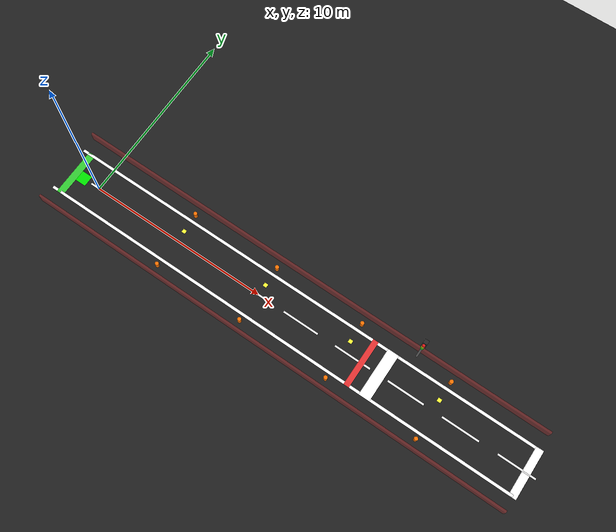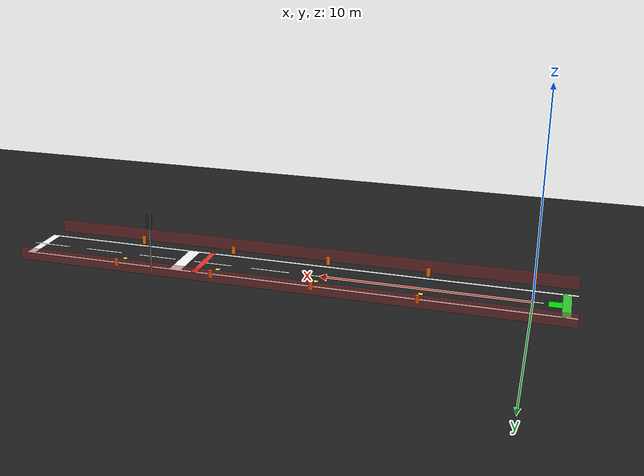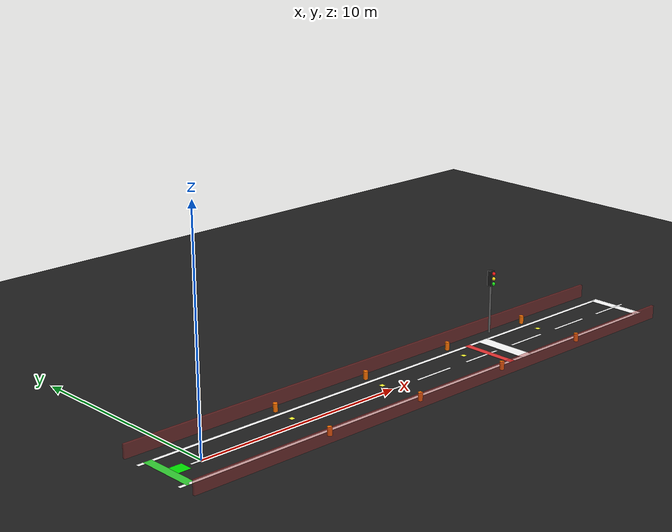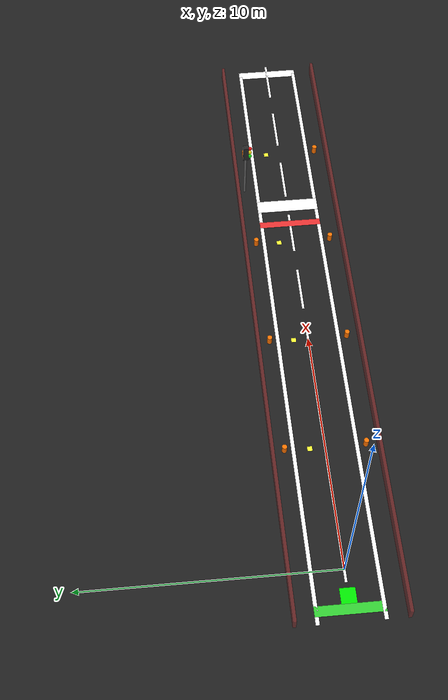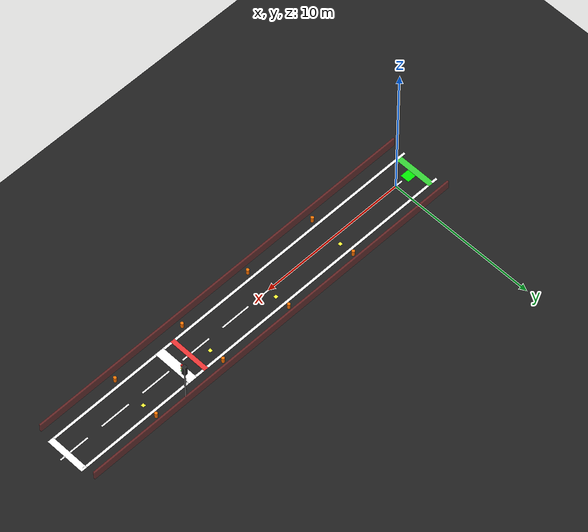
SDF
<?xml version="1.0" ?>
<sdf version='1.10'>
  <world name='abaja_lane_track'>

    <!-- ====================================================================
         PHYSICS
    ==================================================================== -->
    <physics name='1ms' type='ignored'>
      <max_step_size>0.001</max_step_size>
      <real_time_factor>1</real_time_factor>
    </physics>

    <!-- ====================================================================
         PLUGINS — All systems needed for sensors
    ==================================================================== -->
    <plugin filename='gz-sim-physics-system'
            name='gz::sim::systems::Physics'/>

    <!-- Sensor system: required for camera, lidar, imu, navsat to work -->
    <plugin filename='gz-sim-sensors-system'
            name='gz::sim::systems::Sensors'>
      <render_engine>ogre2</render_engine>
    </plugin>

    <plugin filename='gz-sim-scene-broadcaster-system'
            name='gz::sim::systems::SceneBroadcaster'/>

    <plugin filename='gz-sim-user-commands-system'
            name='gz::sim::systems::UserCommands'/>

    <!-- IMU system: enables imu sensor simulation -->
    <plugin filename='gz-sim-imu-system'
            name='gz::sim::systems::Imu'/>

    <!-- NavSat (GPS) system: enables navsat sensor simulation -->
    <plugin filename='gz-sim-navsat-system'
            name='gz::sim::systems::NavSat'/>

    <!-- ====================================================================
         SCENE & LIGHTING
    ==================================================================== -->
    <scene>
      <ambient>0.5 0.5 0.5 1</ambient>
      <background>0.60 0.75 0.92 1</background>
      <shadows>false</shadows>
    </scene>

    <!-- Overhead sun — bright, directional, no shadows (fast rendering) -->
    <light name='sun' type='directional'>
      <cast_shadows>false</cast_shadows>
      <pose>0 0 15 0 0 0</pose>
      <diffuse>0.95 0.95 0.90 1</diffuse>
      <specular>0.30 0.30 0.30 1</specular>
      <direction>-0.3 0.1 -0.95</direction>
      <attenuation>
        <range>1000</range>
        <constant>0.9</constant>
        <linear>0.01</linear>
        <quadratic>0.001</quadratic>
      </attenuation>
    </light>

    <!-- Secondary fill light (reduces harsh shadows) -->
    <light name='fill_light' type='point'>
      <pose>12 0 8 0 0 0</pose>
      <diffuse>0.4 0.4 0.4 1</diffuse>
      <specular>0.1 0.1 0.1 1</specular>
      <attenuation>
        <range>50</range>
        <constant>0.5</constant>
        <linear>0.02</linear>
        <quadratic>0.002</quadratic>
      </attenuation>
    </light>

    <model name='ground_plane'>
      <static>true</static>
      <link name='link'>
        <collision name='collision'>
          <geometry>
            <plane>
              <normal>0 0 1</normal>
              <size>80 30</size>
            </plane>
          </geometry>
          <surface>
            <friction>
              <ode>
                <mu>1.0</mu>
                <mu2>1.0</mu2>
              </ode>
            </friction>
          </surface>
        </collision>
        <visual name='visual'>
          <geometry>
            <plane>
              <normal>0 0 1</normal>
              <size>80 30</size>
            </plane>
          </geometry>
          <!-- Dark asphalt — high contrast with white lane markings -->
          <material>
            <ambient>0.12 0.12 0.12 1</ambient>
            <diffuse>0.12 0.12 0.12 1</diffuse>
            <specular>0.02 0.02 0.02 1</specular>
          </material>
        </visual>
      </link>
    </model>

    <!-- == LEFT EDGE LINE (continuous) == -->
    <model name='left_edge_line'>
      <static>true</static>
      <pose>11.5 1.25 0.005 0 0 0</pose>
      <link name='link'>
        <visual name='vis'>
          <geometry><box><size>27 0.15 0.01</size></box></geometry>
          <material>
            <ambient>1 1 1 1</ambient>
            <diffuse>1 1 1 1</diffuse>
            <specular>0.6 0.6 0.6 1</specular>
          </material>
        </visual>
        <collision name='col'>
          <geometry><box><size>27 0.15 0.01</size></box></geometry>
        </collision>
      </link>
    </model>

    <!-- == RIGHT EDGE LINE (continuous) == -->
    <model name='right_edge_line'>
      <static>true</static>
      <pose>11.5 -1.25 0.005 0 0 0</pose>
      <link name='link'>
        <visual name='vis'>
          <geometry><box><size>27 0.15 0.01</size></box></geometry>
          <material>
            <ambient>1 1 1 1</ambient>
            <diffuse>1 1 1 1</diffuse>
            <specular>0.6 0.6 0.6 1</specular>
          </material>
        </visual>
        <collision name='col'>
          <geometry><box><size>27 0.15 0.01</size></box></geometry>
        </collision>
      </link>
    </model>

    <!-- == CENTRE DASHES (2m on, 1m gap, starting at X=0) == -->
    <!-- 9 dashes covering X=0 to X=25m -->
    <model name='dash_1'><static>true</static><pose>0.5 0 0.005 0 0 0</pose>
      <link name='l'><visual name='v'><geometry><box><size>2 0.10 0.01</size></box></geometry>
        <material><ambient>1 1 1 1</ambient><diffuse>1 1 1 1</diffuse></material></visual>
        <collision name='c'><geometry><box><size>2 0.10 0.01</size></box></geometry></collision></link></model>
    <model name='dash_2'><static>true</static><pose>3.5 0 0.005 0 0 0</pose>
      <link name='l'><visual name='v'><geometry><box><size>2 0.10 0.01</size></box></geometry>
        <material><ambient>1 1 1 1</ambient><diffuse>1 1 1 1</diffuse></material></visual>
        <collision name='c'><geometry><box><size>2 0.10 0.01</size></box></geometry></collision></link></model>
    <model name='dash_3'><static>true</static><pose>6.5 0 0.005 0 0 0</pose>
      <link name='l'><visual name='v'><geometry><box><size>2 0.10 0.01</size></box></geometry>
        <material><ambient>1 1 1 1</ambient><diffuse>1 1 1 1</diffuse></material></visual>
        <collision name='c'><geometry><box><size>2 0.10 0.01</size></box></geometry></collision></link></model>
    <model name='dash_4'><static>true</static><pose>9.5 0 0.005 0 0 0</pose>
      <link name='l'><visual name='v'><geometry><box><size>2 0.10 0.01</size></box></geometry>
        <material><ambient>1 1 1 1</ambient><diffuse>1 1 1 1</diffuse></material></visual>
        <collision name='c'><geometry><box><size>2 0.10 0.01</size></box></geometry></collision></link></model>
    <model name='dash_5'><static>true</static><pose>12.5 0 0.005 0 0 0</pose>
      <link name='l'><visual name='v'><geometry><box><size>2 0.10 0.01</size></box></geometry>
        <material><ambient>1 1 1 1</ambient><diffuse>1 1 1 1</diffuse></material></visual>
        <collision name='c'><geometry><box><size>2 0.10 0.01</size></box></geometry></collision></link></model>
    <model name='dash_6'><static>true</static><pose>15.5 0 0.005 0 0 0</pose>
      <link name='l'><visual name='v'><geometry><box><size>2 0.10 0.01</size></box></geometry>
        <material><ambient>1 1 1 1</ambient><diffuse>1 1 1 1</diffuse></material></visual>
        <collision name='c'><geometry><box><size>2 0.10 0.01</size></box></geometry></collision></link></model>
    <model name='dash_7'><static>true</static><pose>18.5 0 0.005 0 0 0</pose>
      <link name='l'><visual name='v'><geometry><box><size>2 0.10 0.01</size></box></geometry>
        <material><ambient>1 1 1 1</ambient><diffuse>1 1 1 1</diffuse></material></visual>
        <collision name='c'><geometry><box><size>2 0.10 0.01</size></box></geometry></collision></link></model>
    <model name='dash_8'><static>true</static><pose>21.5 0 0.005 0 0 0</pose>
      <link name='l'><visual name='v'><geometry><box><size>2 0.10 0.01</size></box></geometry>
        <material><ambient>1 1 1 1</ambient><diffuse>1 1 1 1</diffuse></material></visual>
        <collision name='c'><geometry><box><size>2 0.10 0.01</size></box></geometry></collision></link></model>
    <model name='dash_9'><static>true</static><pose>24.5 0 0.005 0 0 0</pose>
      <link name='l'><visual name='v'><geometry><box><size>2 0.10 0.01</size></box></geometry>
        <material><ambient>1 1 1 1</ambient><diffuse>1 1 1 1</diffuse></material></visual>
        <collision name='c'><geometry><box><size>2 0.10 0.01</size></box></geometry></collision></link></model>

    <!-- == STOP LINE at X=25m == -->
    <model name='stop_line'>
      <static>true</static>
      <pose>25 0 0.005 0 0 0</pose>
      <link name='link'>
        <visual name='vis'>
          <geometry><box><size>0.40 2.65 0.01</size></box></geometry>
          <material><ambient>1 1 1 1</ambient><diffuse>1 1 1 1</diffuse></material>
        </visual>
        <collision name='col'>
          <geometry><box><size>0.40 2.65 0.01</size></box></geometry>
        </collision>
      </link>
    </model>

    <!-- == START LINE at X=-1m (just behind spawn point) == -->
    <model name='start_line'>
      <static>true</static>
      <pose>-1.5 0 0.005 0 0 0</pose>
      <link name='link'>
        <visual name='vis'>
          <geometry><box><size>0.40 2.65 0.01</size></box></geometry>
          <material><ambient>0.2 0.8 0.2 1</ambient><diffuse>0.2 0.8 0.2 1</diffuse></material>
        </visual>
        <collision name='col'>
          <geometry><box><size>0.40 2.65 0.01</size></box></geometry>
        </collision>
      </link>
    </model>

    <model name='left_wall'>
      <static>true</static>
      <pose>11.5 2.1 0.30 0 0 0</pose>
      <link name='link'>
        <collision name='col'>
          <geometry><box><size>27 0.12 0.60</size></box></geometry>
        </collision>
        <visual name='vis'>
          <geometry><box><size>27 0.12 0.60</size></box></geometry>
          <material>
            <ambient>0.80 0.20 0.20 0.4</ambient>
            <diffuse>0.80 0.20 0.20 0.4</diffuse>
          </material>
        </visual>
      </link>
    </model>

    <model name='right_wall'>
      <static>true</static>
      <pose>11.5 -2.1 0.30 0 0 0</pose>
      <link name='link'>
        <collision name='col'>
          <geometry><box><size>27 0.12 0.60</size></box></geometry>
        </collision>
        <visual name='vis'>
          <geometry><box><size>27 0.12 0.60</size></box></geometry>
          <material>
            <ambient>0.80 0.20 0.20 0.4</ambient>
            <diffuse>0.80 0.20 0.20 0.4</diffuse>
          </material>
        </visual>
      </link>
    </model>

    <!-- Left side cones (Y = +1.60m) at X = 5, 10, 15, 20m -->
    <model name='cone_L_5'><static>true</static><pose>5 1.60 0.18 0 0 0</pose>
      <link name='l'>
        <visual name='v'><geometry><cylinder><radius>0.10</radius><length>0.36</length></cylinder></geometry>
          <material><ambient>1 0.45 0 1</ambient><diffuse>1 0.45 0 1</diffuse></material></visual>
        <collision name='c'><geometry><cylinder><radius>0.10</radius><length>0.36</length></cylinder></geometry></collision>
      </link></model>
    <model name='cone_L_10'><static>true</static><pose>10 1.60 0.18 0 0 0</pose>
      <link name='l'>
        <visual name='v'><geometry><cylinder><radius>0.10</radius><length>0.36</length></cylinder></geometry>
          <material><ambient>1 0.45 0 1</ambient><diffuse>1 0.45 0 1</diffuse></material></visual>
        <collision name='c'><geometry><cylinder><radius>0.10</radius><length>0.36</length></cylinder></geometry></collision>
      </link></model>
    <model name='cone_L_15'><static>true</static><pose>15 1.60 0.18 0 0 0</pose>
      <link name='l'>
        <visual name='v'><geometry><cylinder><radius>0.10</radius><length>0.36</length></cylinder></geometry>
          <material><ambient>1 0.45 0 1</ambient><diffuse>1 0.45 0 1</diffuse></material></visual>
        <collision name='c'><geometry><cylinder><radius>0.10</radius><length>0.36</length></cylinder></geometry></collision>
      </link></model>
    <model name='cone_L_20'><static>true</static><pose>20 1.60 0.18 0 0 0</pose>
      <link name='l'>
        <visual name='v'><geometry><cylinder><radius>0.10</radius><length>0.36</length></cylinder></geometry>
          <material><ambient>1 0.45 0 1</ambient><diffuse>1 0.45 0 1</diffuse></material></visual>
        <collision name='c'><geometry><cylinder><radius>0.10</radius><length>0.36</length></cylinder></geometry></collision>
      </link></model>

    <!-- Right side cones (Y = -1.60m) at X = 5, 10, 15, 20m -->
    <model name='cone_R_5'><static>true</static><pose>5 -1.60 0.18 0 0 0</pose>
      <link name='l'>
        <visual name='v'><geometry><cylinder><radius>0.10</radius><length>0.36</length></cylinder></geometry>
          <material><ambient>1 0.45 0 1</ambient><diffuse>1 0.45 0 1</diffuse></material></visual>
        <collision name='c'><geometry><cylinder><radius>0.10</radius><length>0.36</length></cylinder></geometry></collision>
      </link></model>
    <model name='cone_R_10'><static>true</static><pose>10 -1.60 0.18 0 0 0</pose>
      <link name='l'>
        <visual name='v'><geometry><cylinder><radius>0.10</radius><length>0.36</length></cylinder></geometry>
          <material><ambient>1 0.45 0 1</ambient><diffuse>1 0.45 0 1</diffuse></material></visual>
        <collision name='c'><geometry><cylinder><radius>0.10</radius><length>0.36</length></cylinder></geometry></collision>
      </link></model>
    <model name='cone_R_15'><static>true</static><pose>15 -1.60 0.18 0 0 0</pose>
      <link name='l'>
        <visual name='v'><geometry><cylinder><radius>0.10</radius><length>0.36</length></cylinder></geometry>
          <material><ambient>1 0.45 0 1</ambient><diffuse>1 0.45 0 1</diffuse></material></visual>
        <collision name='c'><geometry><cylinder><radius>0.10</radius><length>0.36</length></cylinder></geometry></collision>
      </link></model>
    <model name='cone_R_20'><static>true</static><pose>20 -1.60 0.18 0 0 0</pose>
      <link name='l'>
        <visual name='v'><geometry><cylinder><radius>0.10</radius><length>0.36</length></cylinder></geometry>
          <material><ambient>1 0.45 0 1</ambient><diffuse>1 0.45 0 1</diffuse></material></visual>
        <collision name='c'><geometry><cylinder><radius>0.10</radius><length>0.36</length></cylinder></geometry></collision>
      </link></model>

    <model name='spawn_marker'>
      <static>true</static>
      <pose>-1 0 0.005 0 0 0</pose>
      <link name='link'>
        <visual name='vis'>
          <geometry><box><size>0.6 0.6 0.01</size></box></geometry>
          <material><ambient>0 0.9 0 1</ambient><diffuse>0 0.9 0 1</diffuse></material>
        </visual>
      </link>
    </model>

    <model name='marker_5m'><static>true</static><pose>5 0.60 0.005 0 0 0</pose>
      <link name='l'><visual name='v'><geometry><box><size>0.20 0.20 0.01</size></box></geometry>
        <material><ambient>1 1 0.2 1</ambient><diffuse>1 1 0.2 1</diffuse></material></visual></link></model>
    <model name='marker_10m'><static>true</static><pose>10 0.60 0.005 0 0 0</pose>
      <link name='l'><visual name='v'><geometry><box><size>0.20 0.20 0.01</size></box></geometry>
        <material><ambient>1 1 0.2 1</ambient><diffuse>1 1 0.2 1</diffuse></material></visual></link></model>
    <model name='marker_15m'><static>true</static><pose>15 0.60 0.005 0 0 0</pose>
      <link name='l'><visual name='v'><geometry><box><size>0.20 0.20 0.01</size></box></geometry>
        <material><ambient>1 1 0.2 1</ambient><diffuse>1 1 0.2 1</diffuse></material></visual></link></model>
    <model name='marker_20m'><static>true</static><pose>20 0.60 0.005 0 0 0</pose>
      <link name='l'><visual name='v'><geometry><box><size>0.20 0.20 0.01</size></box></geometry>
        <material><ambient>1 1 0.2 1</ambient><diffuse>1 1 0.2 1</diffuse></material></visual></link></model>

    <!-- Traffic Signal Pole -->
    <model name='traffic_signal_pole'>
      <static>true</static>
      <pose>18.0 1.8 1.2 0 0 0</pose>
      <link name='link'>
        <visual name='pole_vis'>
          <geometry><cylinder><radius>0.05</radius><length>2.4</length></cylinder></geometry>
          <material><ambient>0.4 0.4 0.4 1</ambient><diffuse>0.4 0.4 0.4 1</diffuse></material>
        </visual>
        <collision name='pole_col'>
          <geometry><cylinder><radius>0.05</radius><length>2.4</length></cylinder></geometry>
        </collision>
      </link>
    </model>

    <!-- Signal housing (dark grey box) -->
    <model name='traffic_signal_housing'>
      <static>true</static>
      <pose>18.0 1.8 2.6 0 0 0</pose>
      <link name='link'>
        <visual name='housing_vis'>
          <geometry><box><size>0.22 0.22 0.72</size></box></geometry>
          <material><ambient>0.15 0.15 0.15 1</ambient><diffuse>0.15 0.15 0.15 1</diffuse></material>
        </visual>
        <collision name='housing_col'>
          <geometry><box><size>0.22 0.22 0.72</size></box></geometry>
        </collision>
      </link>
    </model>

    <!-- RED light (top) -->
    <model name='signal_red'>
      <static>true</static>
      <pose>18.0 1.62 2.84 0 0 0</pose>
      <link name='link'>
        <visual name='vis'>
          <geometry><sphere><radius>0.08</radius></sphere></geometry>
          <material><ambient>0.95 0.1 0.1 1</ambient><diffuse>0.95 0.1 0.1 1</diffuse>
            <specular>1 1 1 1</specular><emissive>0.8 0.0 0.0 1</emissive></material>
        </visual>
      </link>
    </model>

    <!-- YELLOW light (middle) -->
    <model name='signal_yellow'>
      <static>true</static>
      <pose>18.0 1.62 2.60 0 0 0</pose>
      <link name='link'>
        <visual name='vis'>
          <geometry><sphere><radius>0.08</radius></sphere></geometry>
          <material><ambient>0.95 0.85 0.1 1</ambient><diffuse>0.95 0.85 0.1 1</diffuse>
            <specular>1 1 1 1</specular><emissive>0.7 0.7 0.0 1</emissive></material>
        </visual>
      </link>
    </model>

    <!-- GREEN light (bottom) -->
    <model name='signal_green'>
      <static>true</static>
      <pose>18.0 1.62 2.36 0 0 0</pose>
      <link name='link'>
        <visual name='vis'>
          <geometry><sphere><radius>0.08</radius></sphere></geometry>
          <material><ambient>0.1 0.90 0.1 1</ambient><diffuse>0.1 0.90 0.1 1</diffuse>
            <specular>1 1 1 1</specular><emissive>0.0 0.8 0.0 1</emissive></material>
        </visual>
      </link>
    </model>

    <model name='stop_line_reinforced'>
      <static>true</static>
      <pose>17.0 0 0.006 0 0 0</pose>
      <link name='link'>
        <visual name='vis'>
          <geometry><box><size>0.60 2.65 0.01</size></box></geometry>
          <material><ambient>1 1 1 1</ambient><diffuse>1 1 1 1</diffuse>
            <specular>0.8 0.8 0.8 1</specular></material>
        </visual>
        <collision name='col'>
          <geometry><box><size>0.60 2.65 0.01</size></box></geometry>
        </collision>
      </link>
    </model>

    <!-- Stop zone approach marker (red strip 1.5m before stop line) -->
    <model name='stop_zone_marker'>
      <static>true</static>
      <pose>16.0 0 0.006 0 0 0</pose>
      <link name='link'>
        <visual name='vis'>
          <geometry><box><size>0.30 2.65 0.01</size></box></geometry>
          <material><ambient>0.9 0.2 0.2 1</ambient><diffuse>0.9 0.2 0.2 1</diffuse></material>
        </visual>
      </link>
    </model>

  </world>
</sdf>
